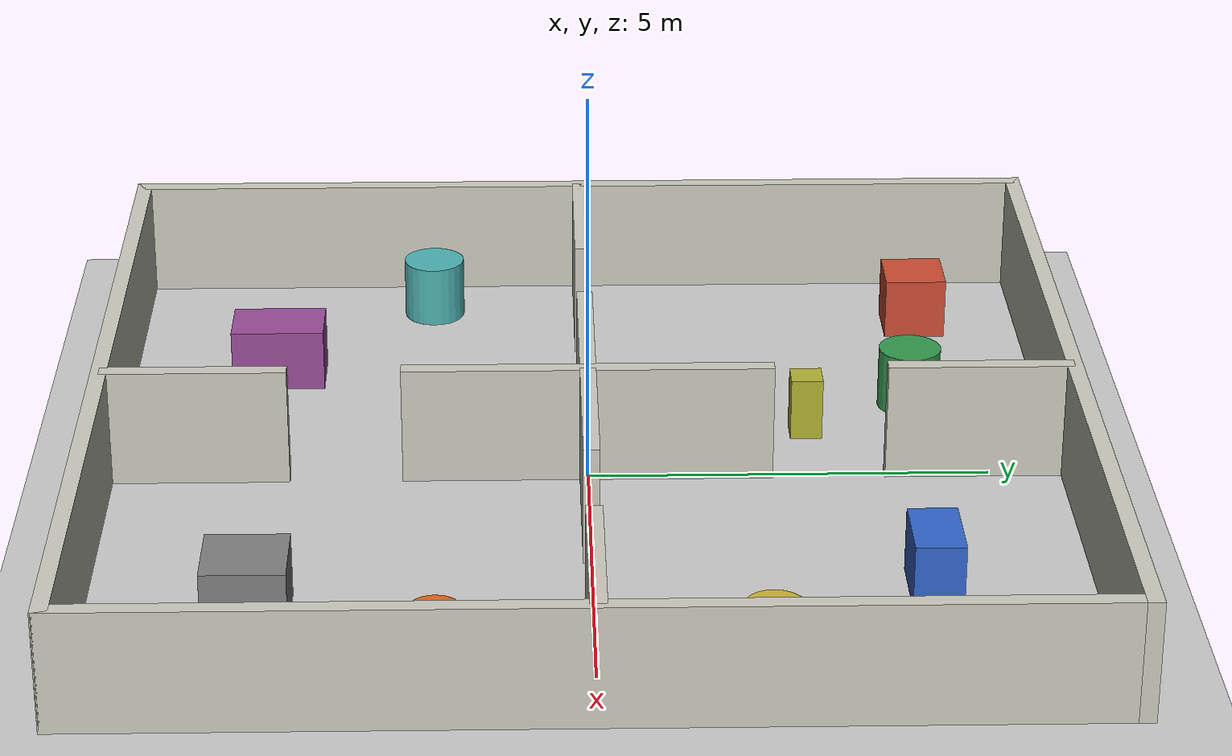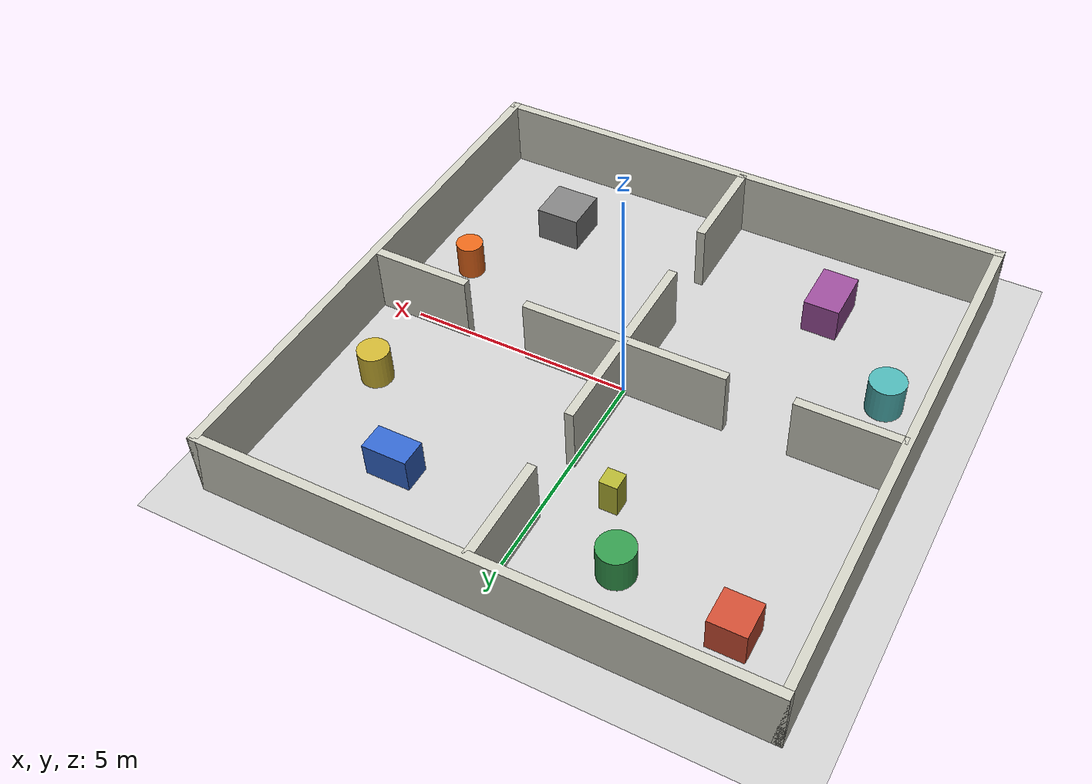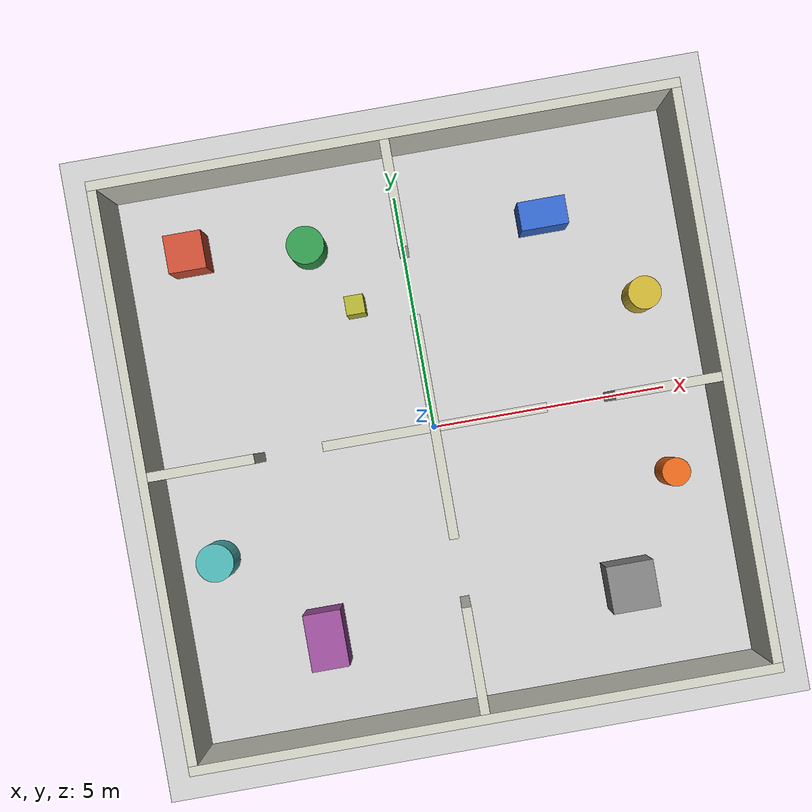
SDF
<?xml version="1.0"?>
<sdf version="1.6">
  <world name="rooms_world">
    <physics type="ode">
      <max_step_size>0.004</max_step_size>
      <real_time_factor>1.0</real_time_factor>
      <real_time_update_rate>250</real_time_update_rate>
    </physics>
    <include><uri>model://sun</uri></include>
    <include><uri>model://ground_plane</uri></include>
    <model name="wall_n"><static>true</static><pose>0 6 0.75 0 0 0</pose>
      <link name="l">
        <collision name="c"><geometry><box><size>12.2 0.2 1.5</size></box></geometry></collision>
        <visual name="v"><geometry><box><size>12.2 0.2 1.5</size></box></geometry>
          <material><ambient>0.8 0.8 0.75 1</ambient><diffuse>0.8 0.8 0.75 1</diffuse></material></visual>
      </link></model>
    <model name="wall_s"><static>true</static><pose>0 -6 0.75 0 0 0</pose>
      <link name="l">
        <collision name="c"><geometry><box><size>12.2 0.2 1.5</size></box></geometry></collision>
        <visual name="v"><geometry><box><size>12.2 0.2 1.5</size></box></geometry>
          <material><ambient>0.8 0.8 0.75 1</ambient><diffuse>0.8 0.8 0.75 1</diffuse></material></visual>
      </link></model>
    <model name="wall_e"><static>true</static><pose>6 0 0.75 0 0 0</pose>
      <link name="l">
        <collision name="c"><geometry><box><size>0.2 12.2 1.5</size></box></geometry></collision>
        <visual name="v"><geometry><box><size>0.2 12.2 1.5</size></box></geometry>
          <material><ambient>0.8 0.8 0.75 1</ambient><diffuse>0.8 0.8 0.75 1</diffuse></material></visual>
      </link></model>
    <model name="wall_w"><static>true</static><pose>-6 0 0.75 0 0 0</pose>
      <link name="l">
        <collision name="c"><geometry><box><size>0.2 12.2 1.5</size></box></geometry></collision>
        <visual name="v"><geometry><box><size>0.2 12.2 1.5</size></box></geometry>
          <material><ambient>0.8 0.8 0.75 1</ambient><diffuse>0.8 0.8 0.75 1</diffuse></material></visual>
      </link></model>
    <model name="in_v0"><static>true</static><pose>0 -4.85 0.75 0 0 0</pose>
      <link name="l">
        <collision name="c"><geometry><box><size>0.2 2.3 1.5</size></box></geometry></collision>
        <visual name="v"><geometry><box><size>0.2 2.3 1.5</size></box></geometry>
          <material><ambient>0.8 0.8 0.75 1</ambient><diffuse>0.8 0.8 0.75 1</diffuse></material></visual>
      </link></model>
    <model name="in_h0"><static>true</static><pose>-4.85 0 0.75 0 0 0</pose>
      <link name="l">
        <collision name="c"><geometry><box><size>2.3 0.2 1.5</size></box></geometry></collision>
        <visual name="v"><geometry><box><size>2.3 0.2 1.5</size></box></geometry>
          <material><ambient>0.8 0.8 0.75 1</ambient><diffuse>0.8 0.8 0.75 1</diffuse></material></visual>
      </link></model>
    <model name="in_v1"><static>true</static><pose>0 0.0 0.75 0 0 0</pose>
      <link name="l">
        <collision name="c"><geometry><box><size>0.2 4.6 1.5</size></box></geometry></collision>
        <visual name="v"><geometry><box><size>0.2 4.6 1.5</size></box></geometry>
          <material><ambient>0.8 0.8 0.75 1</ambient><diffuse>0.8 0.8 0.75 1</diffuse></material></visual>
      </link></model>
    <model name="in_h1"><static>true</static><pose>0.0 0 0.75 0 0 0</pose>
      <link name="l">
        <collision name="c"><geometry><box><size>4.6 0.2 1.5</size></box></geometry></collision>
        <visual name="v"><geometry><box><size>4.6 0.2 1.5</size></box></geometry>
          <material><ambient>0.8 0.8 0.75 1</ambient><diffuse>0.8 0.8 0.75 1</diffuse></material></visual>
      </link></model>
    <model name="in_v2"><static>true</static><pose>0 4.85 0.75 0 0 0</pose>
      <link name="l">
        <collision name="c"><geometry><box><size>0.2 2.3 1.5</size></box></geometry></collision>
        <visual name="v"><geometry><box><size>0.2 2.3 1.5</size></box></geometry>
          <material><ambient>0.8 0.8 0.75 1</ambient><diffuse>0.8 0.8 0.75 1</diffuse></material></visual>
      </link></model>
    <model name="in_h2"><static>true</static><pose>4.85 0 0.75 0 0 0</pose>
      <link name="l">
        <collision name="c"><geometry><box><size>2.3 0.2 1.5</size></box></geometry></collision>
        <visual name="v"><geometry><box><size>2.3 0.2 1.5</size></box></geometry>
          <material><ambient>0.8 0.8 0.75 1</ambient><diffuse>0.8 0.8 0.75 1</diffuse></material></visual>
      </link></model>
    <model name="box_nw"><static>true</static><pose>-4.5 4.5 0.4 0 0 0</pose>
      <link name="l">
        <collision name="c"><geometry><box><size>0.8 0.8 0.8</size></box></geometry></collision>
        <visual name="v"><geometry><box><size>0.8 0.8 0.8</size></box></geometry>
          <material><ambient>0.8 0.3 0.2 1</ambient><diffuse>0.8 0.3 0.2 1</diffuse></material></visual>
      </link></model>
    <model name="cyl_nw"><static>true</static><pose>-2 4.2 0.4 0 0 0</pose>
      <link name="l">
        <collision name="c"><geometry><cylinder><radius>0.4</radius><length>0.8</length></cylinder></geometry></collision>
        <visual name="v"><geometry><cylinder><radius>0.4</radius><length>0.8</length></cylinder></geometry>
          <material><ambient>0.2 0.6 0.3 1</ambient><diffuse>0.2 0.6 0.3 1</diffuse></material></visual>
      </link></model>
    <model name="box_ne"><static>true</static><pose>3 4 0.4 0 0 0</pose>
      <link name="l">
        <collision name="c"><geometry><box><size>1.0 0.6 0.8</size></box></geometry></collision>
        <visual name="v"><geometry><box><size>1.0 0.6 0.8</size></box></geometry>
          <material><ambient>0.2 0.4 0.8 1</ambient><diffuse>0.2 0.4 0.8 1</diffuse></material></visual>
      </link></model>
    <model name="cyl_ne"><static>true</static><pose>4.8 2 0.4 0 0 0</pose>
      <link name="l">
        <collision name="c"><geometry><cylinder><radius>0.35</radius><length>0.8</length></cylinder></geometry></collision>
        <visual name="v"><geometry><cylinder><radius>0.35</radius><length>0.8</length></cylinder></geometry>
          <material><ambient>0.8 0.7 0.2 1</ambient><diffuse>0.8 0.7 0.2 1</diffuse></material></visual>
      </link></model>
    <model name="box_sw"><static>true</static><pose>-3 -4 0.4 0 0 0</pose>
      <link name="l">
        <collision name="c"><geometry><box><size>0.8 1.2 0.8</size></box></geometry></collision>
        <visual name="v"><geometry><box><size>0.8 1.2 0.8</size></box></geometry>
          <material><ambient>0.6 0.3 0.6 1</ambient><diffuse>0.6 0.3 0.6 1</diffuse></material></visual>
      </link></model>
    <model name="cyl_sw"><static>true</static><pose>-5 -2 0.4 0 0 0</pose>
      <link name="l">
        <collision name="c"><geometry><cylinder><radius>0.4</radius><length>0.8</length></cylinder></geometry></collision>
        <visual name="v"><geometry><cylinder><radius>0.4</radius><length>0.8</length></cylinder></geometry>
          <material><ambient>0.3 0.7 0.7 1</ambient><diffuse>0.3 0.7 0.7 1</diffuse></material></visual>
      </link></model>
    <model name="box_se"><static>true</static><pose>3.5 -4 0.4 0 0 0</pose>
      <link name="l">
        <collision name="c"><geometry><box><size>1.0 1.0 0.8</size></box></geometry></collision>
        <visual name="v"><geometry><box><size>1.0 1.0 0.8</size></box></geometry>
          <material><ambient>0.5 0.5 0.5 1</ambient><diffuse>0.5 0.5 0.5 1</diffuse></material></visual>
      </link></model>
    <model name="cyl_se"><static>true</static><pose>4.8 -1.8 0.4 0 0 0</pose>
      <link name="l">
        <collision name="c"><geometry><cylinder><radius>0.3</radius><length>0.8</length></cylinder></geometry></collision>
        <visual name="v"><geometry><cylinder><radius>0.3</radius><length>0.8</length></cylinder></geometry>
          <material><ambient>0.9 0.4 0.1 1</ambient><diffuse>0.9 0.4 0.1 1</diffuse></material></visual>
      </link></model>
    <model name="box_mid"><static>true</static><pose>-1.2 2.8 0.4 0 0 0</pose>
      <link name="l">
        <collision name="c"><geometry><box><size>0.4 0.4 0.8</size></box></geometry></collision>
        <visual name="v"><geometry><box><size>0.4 0.4 0.8</size></box></geometry>
          <material><ambient>0.7 0.7 0.2 1</ambient><diffuse>0.7 0.7 0.2 1</diffuse></material></visual>
      </link></model>
  </world>
</sdf>
